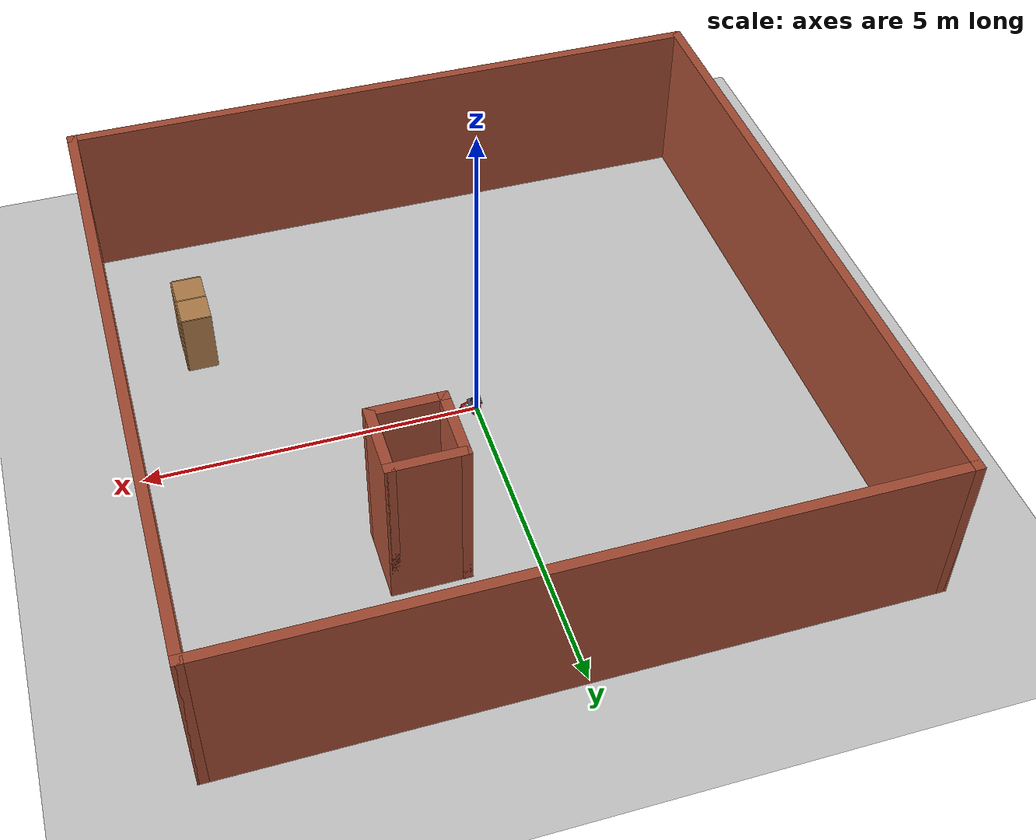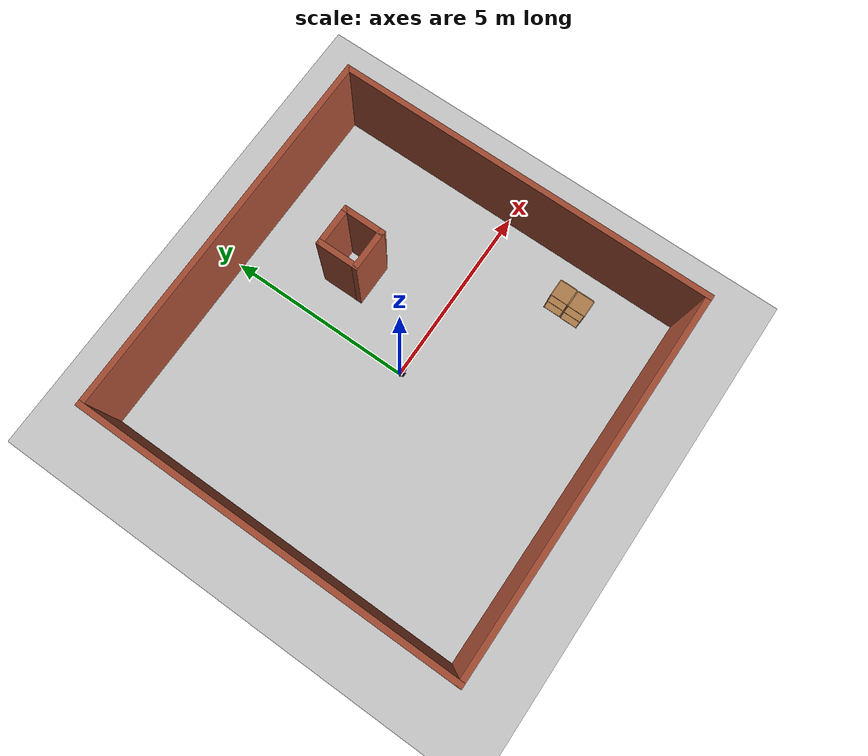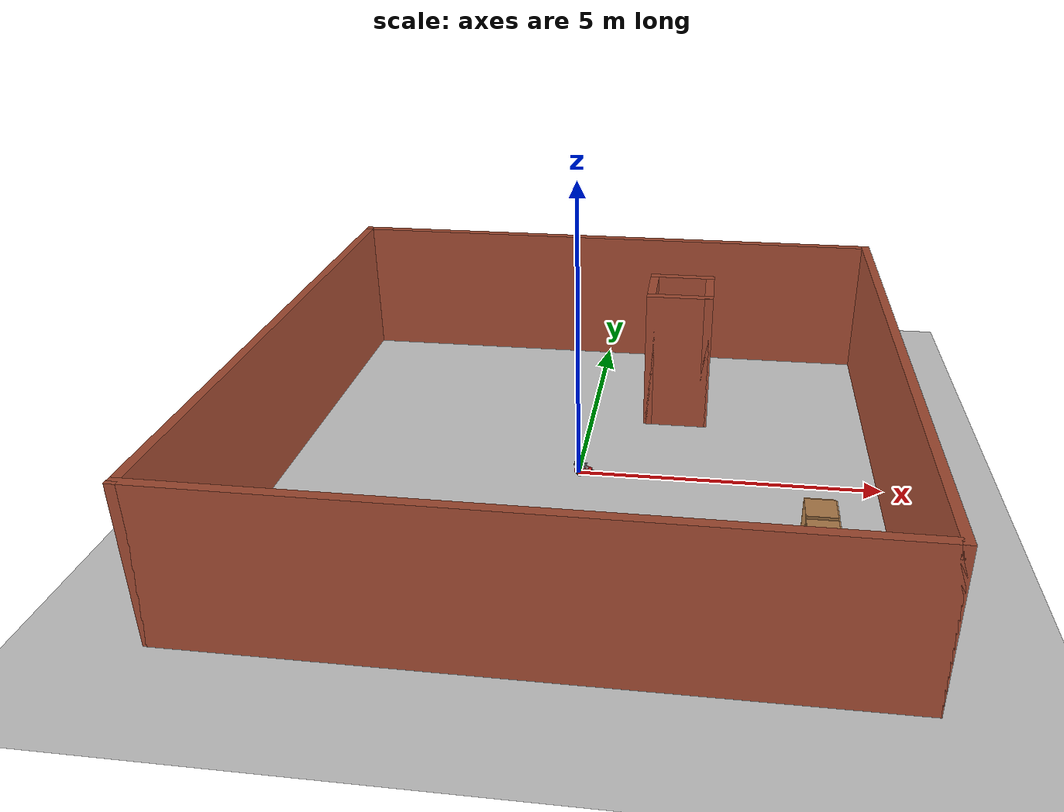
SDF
<sdf version="1.7">
 <world name="default">
  <light name="sun" type="directional">
   <pose>0 0 10 0 -0 0</pose>
   <diffuse>0.8 0.8 0.8 1</diffuse>
   <specular>0.2 0.2 0.2 1</specular>
   <attenuation>
    <range>1000</range>
    <constant>0.9</constant>
    <linear>0.01</linear>
    <quadratic>0.001</quadratic>
   </attenuation>
   <direction>-0.5 0.1 -0.9</direction>
   <spot><inner_angle>0</inner_angle><outer_angle>0</outer_angle><falloff>0</falloff></spot>
  </light>
  <model name="ground_plane">
   <static>1</static>
   <link name="link">
    <collision name="collision">
     <geometry><plane><normal>0 0 1</normal><size>100 100</size></plane></geometry>
     <surface><friction><ode><mu>100</mu><mu2>50</mu2></ode></friction></surface>
    </collision>
    <visual name="visual">
     <cast_shadows>0</cast_shadows>
     <geometry><plane><normal>0 0 1</normal><size>100 100</size></plane></geometry>
     <material>
      <script><uri>file://media/materials/scripts/gazebo.material</uri><name>Gazebo/Grey</name></script>
     </material>
    </visual>
   </link>
  </model>
  <gravity>0 0 -9.8</gravity>
  <magnetic_field>6e-06 2.3e-05 -4.2e-05</magnetic_field>
  <atmosphere type="adiabatic"/>
  <physics type="ode">
   <max_step_size>0.001</max_step_size>
   <real_time_factor>1</real_time_factor>
   <real_time_update_rate>1000</real_time_update_rate>
  </physics>
  <scene><ambient>0.4 0.4 0.4 1</ambient><background>0.7 0.7 0.7 1</background><shadows>1</shadows></scene>
  <audio><device>default</device></audio>
  <spherical_coordinates>
   <surface_model>EARTH_WGS84</surface_model>
   <latitude_deg>0</latitude_deg>
   <longitude_deg>0</longitude_deg>
   <elevation>0</elevation>
   <heading_deg>0</heading_deg>
  </spherical_coordinates>
  <model name="boundary">
   <link name="Wall_0">
    <collision name="Wall_0_Collision">
     <geometry><box><size>10.15 0.15 2.5</size></box></geometry>
     <pose>0 0 1.25 0 -0 0</pose>
    </collision>
    <visual name="Wall_0_Visual">
     <pose>0 0 1.25 0 -0 0</pose>
     <geometry><box><size>10.15 0.15 2.5</size></box></geometry>
     <material>
      <script><uri>file://media/materials/scripts/gazebo.material</uri><name>Gazebo/Bricks</name></script>
      <ambient>1 1 1 1</ambient>
     </material>
     <meta><layer>0</layer></meta>
    </visual>
    <pose>-5 0 0 0 -0 1.5708</pose>
   </link>
   <link name="Wall_2">
    <collision name="Wall_2_Collision">
     <geometry><box><size>10.15 0.15 2.5</size></box></geometry>
     <pose>0 0 1.25 0 -0 0</pose>
    </collision>
    <visual name="Wall_2_Visual">
     <pose>0 0 1.25 0 -0 0</pose>
     <geometry><box><size>10.15 0.15 2.5</size></box></geometry>
     <material>
      <script><uri>file://media/materials/scripts/gazebo.material</uri><name>Gazebo/Bricks</name></script>
      <ambient>1 1 1 1</ambient>
     </material>
     <meta><layer>0</layer></meta>
    </visual>
    <pose>0 5 0 0 -0 0</pose>
   </link>
   <link name="Wall_4">
    <collision name="Wall_4_Collision">
     <geometry><box><size>10.15 0.15 2.5</size></box></geometry>
     <pose>0 0 1.25 0 -0 0</pose>
    </collision>
    <visual name="Wall_4_Visual">
     <pose>0 0 1.25 0 -0 0</pose>
     <geometry><box><size>10.15 0.15 2.5</size></box></geometry>
     <material>
      <script><uri>file://media/materials/scripts/gazebo.material</uri><name>Gazebo/Bricks</name></script>
      <ambient>1 1 1 1</ambient>
     </material>
     <meta><layer>0</layer></meta>
    </visual>
    <pose>5 0 0 0 -0 -1.5708</pose>
   </link>
   <link name="Wall_6">
    <collision name="Wall_6_Collision">
     <geometry><box><size>10.15 0.15 2.5</size></box></geometry>
     <pose>0 0 1.25 0 -0 0</pose>
    </collision>
    <visual name="Wall_6_Visual">
     <pose>0 0 1.25 0 -0 0</pose>
     <geometry><box><size>10.15 0.15 2.5</size></box></geometry>
     <material>
      <script><uri>file://media/materials/scripts/gazebo.material</uri><name>Gazebo/Bricks</name></script>
      <ambient>1 1 1 1</ambient>
     </material>
     <meta><layer>0</layer></meta>
    </visual>
    <pose>0 -5 0 0 -0 0</pose>
   </link>
   <static>1</static>
  </model>
  <model name="cabinet">
   <static>1</static>
   <link name="cabinet_bottom_plate">
    <inertial>
     <pose>0 0 -1 0 -0 0</pose>
     <inertia><ixx>2.05</ixx><ixy>0</ixy><ixz>0</ixz><iyy>2.05</iyy><iyz>0</iyz><izz>2.05</izz></inertia>
     <mass>25</mass>
    </inertial>
    <collision name="cabinet_bottom_plate_geom">
     <pose>0 0 0.01 0 -0 0</pose>
     <geometry><box><size>0.45 0.45 0.02</size></box></geometry>
    </collision>
    <visual name="cabinet_bottom_plate_geom_visual">
     <pose>0 0 0.01 0 -0 0</pose>
     <geometry><box><size>0.45 0.45 0.02</size></box></geometry>
     <material>
      <script><uri>file://media/materials/scripts/gazebo.material</uri><name>Gazebo/Wood</name></script>
     </material>
    </visual>
    <collision name="cabinet_bottom_plate_geom_cabinet_back_plate">
     <pose>0.235 0 0.51 0 -0 0</pose>
     <geometry><box><size>0.02 0.45 1.02</size></box></geometry>
    </collision>
    <visual name="cabinet_bottom_plate_geom_cabinet_back_plate_visual">
     <pose>0.235 0 0.51 0 -0 0</pose>
     <geometry><box><size>0.02 0.45 1.02</size></box></geometry>
     <material>
      <script><uri>file://media/materials/scripts/gazebo.material</uri><name>Gazebo/Wood</name></script>
     </material>
    </visual>
    <collision name="cabinet_bottom_plate_geom_cabinet_left_plate">
     <pose>0 0.235 0.51 0 -0 0</pose>
     <geometry><box><size>0.45 0.02 1.02</size></box></geometry>
    </collision>
    <visual name="cabinet_bottom_plate_geom_cabinet_left_plate_visual">
     <pose>0 0.235 0.51 0 -0 0</pose>
     <geometry><box><size>0.45 0.02 1.02</size></box></geometry>
     <material>
      <script><uri>file://media/materials/scripts/gazebo.material</uri><name>Gazebo/Wood</name></script>
     </material>
    </visual>
    <collision name="cabinet_bottom_plate_geom_cabinet_middle_plate">
     <pose>0 0 0.51 0 -0 0</pose>
     <geometry><box><size>0.45 0.45 0.02</size></box></geometry>
    </collision>
    <visual name="cabinet_bottom_plate_geom_cabinet_middle_plate_visual">
     <pose>0 0 0.51 0 -0 0</pose>
     <geometry><box><size>0.45 0.45 0.02</size></box></geometry>
     <material>
      <script><uri>file://media/materials/scripts/gazebo.material</uri><name>Gazebo/Wood</name></script>
     </material>
    </visual>
    <collision name="cabinet_bottom_plate_geom_cabinet_right_plate">
     <pose>0 -0.235 0.51 0 -0 0</pose>
     <geometry><box><size>0.45 0.02 1.02</size></box></geometry>
    </collision>
    <visual name="cabinet_bottom_plate_geom_cabinet_right_plate_visual">
     <pose>0 -0.235 0.51 0 -0 0</pose>
     <geometry><box><size>0.45 0.02 1.02</size></box></geometry>
     <material>
      <script><uri>file://media/materials/scripts/gazebo.material</uri><name>Gazebo/Wood</name></script>
     </material>
    </visual>
    <collision name="cabinet_bottom_plate_geom_cabinet_top_plate">
     <pose>0 0 1.01 0 -0 0</pose>
     <geometry><box><size>0.45 0.45 0.02</size></box></geometry>
    </collision>
    <visual name="cabinet_bottom_plate_geom_cabinet_top_plate_visual">
     <pose>0 0 1.01 0 -0 0</pose>
     <geometry><box><size>0.45 0.45 0.02</size></box></geometry>
     <material>
      <script><uri>file://media/materials/scripts/gazebo.material</uri><name>Gazebo/Wood</name></script>
     </material>
    </visual>
   </link>
   <pose>3.75742 -2.24472 0.02454 0 -0 0</pose>
  </model>
  <model name="cabinet_0">
   <static>1</static>
   <link name="cabinet_bottom_plate">
    <inertial>
     <pose>0 0 -1 0 -0 0</pose>
     <inertia><ixx>2.05</ixx><ixy>0</ixy><ixz>0</ixz><iyy>2.05</iyy><iyz>0</iyz><izz>2.05</izz></inertia>
     <mass>25</mass>
    </inertial>
    <collision name="cabinet_bottom_plate_geom">
     <pose>0 0 0.01 0 -0 0</pose>
     <geometry><box><size>0.45 0.45 0.02</size></box></geometry>
    </collision>
    <visual name="cabinet_bottom_plate_geom_visual">
     <pose>0 0 0.01 0 -0 0</pose>
     <geometry><box><size>0.45 0.45 0.02</size></box></geometry>
     <material>
      <script><uri>file://media/materials/scripts/gazebo.material</uri><name>Gazebo/Wood</name></script>
     </material>
    </visual>
    <collision name="cabinet_bottom_plate_geom_cabinet_back_plate">
     <pose>0.235 0 0.51 0 -0 0</pose>
     <geometry><box><size>0.02 0.45 1.02</size></box></geometry>
    </collision>
    <visual name="cabinet_bottom_plate_geom_cabinet_back_plate_visual">
     <pose>0.235 0 0.51 0 -0 0</pose>
     <geometry><box><size>0.02 0.45 1.02</size></box></geometry>
     <material>
      <script><uri>file://media/materials/scripts/gazebo.material</uri><name>Gazebo/Wood</name></script>
     </material>
    </visual>
    <collision name="cabinet_bottom_plate_geom_cabinet_left_plate">
     <pose>0 0.235 0.51 0 -0 0</pose>
     <geometry><box><size>0.45 0.02 1.02</size></box></geometry>
    </collision>
    <visual name="cabinet_bottom_plate_geom_cabinet_left_plate_visual">
     <pose>0 0.235 0.51 0 -0 0</pose>
     <geometry><box><size>0.45 0.02 1.02</size></box></geometry>
     <material>
      <script><uri>file://media/materials/scripts/gazebo.material</uri><name>Gazebo/Wood</name></script>
     </material>
    </visual>
    <collision name="cabinet_bottom_plate_geom_cabinet_middle_plate">
     <pose>0 0 0.51 0 -0 0</pose>
     <geometry><box><size>0.45 0.45 0.02</size></box></geometry>
    </collision>
    <visual name="cabinet_bottom_plate_geom_cabinet_middle_plate_visual">
     <pose>0 0 0.51 0 -0 0</pose>
     <geometry><box><size>0.45 0.45 0.02</size></box></geometry>
     <material>
      <script><uri>file://media/materials/scripts/gazebo.material</uri><name>Gazebo/Wood</name></script>
     </material>
    </visual>
    <collision name="cabinet_bottom_plate_geom_cabinet_right_plate">
     <pose>0 -0.235 0.51 0 -0 0</pose>
     <geometry><box><size>0.45 0.02 1.02</size></box></geometry>
    </collision>
    <visual name="cabinet_bottom_plate_geom_cabinet_right_plate_visual">
     <pose>0 -0.235 0.51 0 -0 0</pose>
     <geometry><box><size>0.45 0.02 1.02</size></box></geometry>
     <material>
      <script><uri>file://media/materials/scripts/gazebo.material</uri><name>Gazebo/Wood</name></script>
     </material>
    </visual>
    <collision name="cabinet_bottom_plate_geom_cabinet_top_plate">
     <pose>0 0 1.01 0 -0 0</pose>
     <geometry><box><size>0.45 0.45 0.02</size></box></geometry>
    </collision>
    <visual name="cabinet_bottom_plate_geom_cabinet_top_plate_visual">
     <pose>0 0 1.01 0 -0 0</pose>
     <geometry><box><size>0.45 0.45 0.02</size></box></geometry>
     <material>
      <script><uri>file://media/materials/scripts/gazebo.material</uri><name>Gazebo/Wood</name></script>
     </material>
    </visual>
   </link>
   <pose>3.75874 -2.73819 0 0 -0 0</pose>
  </model>
  <model name="pillar">
   <pose>1.9849 1.96819 0 0 -0 0</pose>
   <link name="Wall_30">
    <collision name="Wall_30_Collision">
     <geometry><box><size>1.15 0.15 2.5</size></box></geometry>
     <pose>0 0 1.25 0 -0 0</pose>
    </collision>
    <visual name="Wall_30_Visual">
     <pose>0 0 1.25 0 -0 0</pose>
     <geometry><box><size>1.15 0.15 2.5</size></box></geometry>
     <material>
      <script><uri>file://media/materials/scripts/gazebo.material</uri><name>Gazebo/Bricks</name></script>
      <ambient>1 1 1 1</ambient>
     </material>
     <meta><layer>0</layer></meta>
    </visual>
    <pose>-0.4625 -0.0375 0 0 -0 0</pose>
   </link>
   <link name="Wall_32">
    <collision name="Wall_32_Collision">
     <geometry><box><size>1.15 0.15 2.5</size></box></geometry>
     <pose>0 0 1.25 0 -0 0</pose>
    </collision>
    <visual name="Wall_32_Visual">
     <pose>0 0 1.25 0 -0 0</pose>
     <geometry><box><size>1.15 0.15 2.5</size></box></geometry>
     <material>
      <script><uri>file://media/materials/scripts/gazebo.material</uri><name>Gazebo/Bricks</name></script>
      <ambient>1 1 1 1</ambient>
     </material>
     <meta><layer>0</layer></meta>
    </visual>
    <pose>-0.9625 0.4625 0 0 -0 1.5708</pose>
   </link>
   <link name="Wall_34">
    <collision name="Wall_34_Collision">
     <geometry><box><size>1.15 0.15 2.5</size></box></geometry>
     <pose>0 0 1.25 0 -0 0</pose>
    </collision>
    <visual name="Wall_34_Visual">
     <pose>0 0 1.25 0 -0 0</pose>
     <geometry><box><size>1.15 0.15 2.5</size></box></geometry>
     <material>
      <script><uri>file://media/materials/scripts/gazebo.material</uri><name>Gazebo/Bricks</name></script>
      <ambient>1 1 1 1</ambient>
     </material>
     <meta><layer>0</layer></meta>
    </visual>
    <pose>-0.4625 0.9625 0 0 -0 0</pose>
   </link>
   <link name="Wall_36">
    <collision name="Wall_36_Collision">
     <geometry><box><size>1.15 0.15 2.5</size></box></geometry>
     <pose>0 0 1.25 0 -0 0</pose>
    </collision>
    <visual name="Wall_36_Visual">
     <pose>0 0 1.25 0 -0 0</pose>
     <geometry><box><size>1.15 0.15 2.5</size></box></geometry>
     <material>
      <script><uri>file://media/materials/scripts/gazebo.material</uri><name>Gazebo/Bricks</name></script>
      <ambient>1 1 1 1</ambient>
     </material>
     <meta><layer>0</layer></meta>
    </visual>
    <pose>0.0375 0.4625 0 0 -0 -1.5708</pose>
   </link>
   <static>1</static>
  </model>
  <model name="duckie_bot">
   <link name="base_footprint">
    <inertial>
     <pose>0.024307 0 0.066702 0 -0 0</pose>
     <mass>2.705</mass>
     <inertia>
      <ixx>0.0122819</ixx>
      <ixy>0</ixy>
      <ixz>0.00175218</ixz>
      <iyy>0.0256112</iyy>
      <iyz>0</iyz>
      <izz>0.0236393</izz>
     </inertia>
    </inertial>
    <collision name="base_footprint_fixed_joint_lump__base_link_collision">
     <pose>-0.05 0 0.06 0 -0 0</pose>
     <geometry><box><size>0.14 0.16 0.05</size></box></geometry>
    </collision>
    <collision name="base_footprint_fixed_joint_lump__base_link_collision_1">
     <pose>0.07 0 0.06 0 -0 0</pose>
     <geometry><box><size>0.1 0.08 0.05</size></box></geometry>
    </collision>
    <collision name="base_footprint_fixed_joint_lump__base_link_collision_2">
     <pose>0.04 0 0.06 0 -0 0</pose>
     <geometry><box><size>0.06 0.12 0.05</size></box></geometry>
    </collision>
    <collision name="base_footprint_fixed_joint_lump__base_link_collision_3">
     <pose>-0.14 0 0.06 0 -0 0</pose>
     <geometry><box><size>0.04 0.12 0.05</size></box></geometry>
    </collision>
    <collision name="base_footprint_fixed_joint_lump__camera_link_collision_4">
     <pose>0.03 0 0.1 0 -0 0</pose>
     <geometry><box><size>0.05 0.04 0.03</size></box></geometry>
    </collision>
    <collision name="base_footprint_fixed_joint_lump__caster_ball_collision_5">
     <pose>0.13 0 0.035 0 -0 0</pose>
     <geometry><sphere><radius>0.035</radius></sphere></geometry>
     <surface><friction><ode><mu>0</mu><mu2>0</mu2></ode></friction></surface>
    </collision>
    <collision name="base_footprint_fixed_joint_lump__imu_link_collision_6">
     <pose>-0.05 0 0.086 0 -0 0</pose>
     <geometry><box><size>0.02 0.015 0.002</size></box></geometry>
    </collision>
    <collision name="base_footprint_fixed_joint_lump__lidar_link_collision_7">
     <pose>-0.045 0 0.1625 0 -0 0</pose>
     <geometry><cylinder><length>0.04</length><radius>0.035</radius></cylinder></geometry>
    </collision>
    <visual name="base_footprint_fixed_joint_lump__base_link_visual">
     <pose>-0.05 0 0.06 0 -0 0</pose>
     <geometry><box><size>0.14 0.16 0.05</size></box></geometry>
     <material>
      <script><name>Gazebo/Red</name><uri>file://media/materials/scripts/gazebo.material</uri></script>
     </material>
    </visual>
    <visual name="base_footprint_fixed_joint_lump__base_link_visual_1">
     <pose>0.07 0 0.06 0 -0 0</pose>
     <geometry><box><size>0.1 0.08 0.05</size></box></geometry>
     <material>
      <script><name>Gazebo/Red</name><uri>file://media/materials/scripts/gazebo.material</uri></script>
     </material>
    </visual>
    <visual name="base_footprint_fixed_joint_lump__base_link_visual_2">
     <pose>0.04 0 0.06 0 -0 0</pose>
     <geometry><box><size>0.06 0.12 0.05</size></box></geometry>
     <material>
      <script><name>Gazebo/Red</name><uri>file://media/materials/scripts/gazebo.material</uri></script>
     </material>
    </visual>
    <visual name="base_footprint_fixed_joint_lump__base_link_visual_3">
     <pose>-0.14 0 0.06 0 -0 0</pose>
     <geometry><box><size>0.04 0.12 0.05</size></box></geometry>
     <material>
      <script><name>Gazebo/Red</name><uri>file://media/materials/scripts/gazebo.material</uri></script>
     </material>
    </visual>
    <visual name="base_footprint_fixed_joint_lump__base_link_visual_4">
     <pose>0.07 0.06 0.06 0 0 -0.38</pose>
     <geometry><box><size>0.11 0.02 0.05</size></box></geometry>
     <material>
      <script><name>Gazebo/Red</name><uri>file://media/materials/scripts/gazebo.material</uri></script>
     </material>
    </visual>
    <visual name="base_footprint_fixed_joint_lump__base_link_visual_5">
     <pose>0.07 -0.06 0.06 0 -0 0.38</pose>
     <geometry><box><size>0.11 0.02 0.05</size></box></geometry>
     <material>
      <script><name>Gazebo/Red</name><uri>file://media/materials/scripts/gazebo.material</uri></script>
     </material>
    </visual>
    <visual name="base_footprint_fixed_joint_lump__camera_link_visual_6">
     <pose>0.04 0 0.1 0 -0 0</pose>
     <geometry><box><size>0.03 0.04 0.03</size></box></geometry>
     <material>
      <script><name>Gazebo/White</name><uri>file://media/materials/scripts/gazebo.material</uri></script>
     </material>
    </visual>
    <visual name="base_footprint_fixed_joint_lump__camera_link_visual_7">
     <pose>0.06 0 0.1 3.14159 1.57079 3.14159</pose>
     <geometry><cylinder><length>0.015</length><radius>0.012</radius></cylinder></geometry>
     <material>
      <script><name>Gazebo/White</name><uri>file://media/materials/scripts/gazebo.material</uri></script>
     </material>
    </visual>
    <visual name="base_footprint_fixed_joint_lump__camera_link_visual_8">
     <pose>0.068 0 0.1 3.14159 1.57079 3.14159</pose>
     <geometry><cylinder><length>0.002</length><radius>0.01</radius></cylinder></geometry>
     <material>
      <script><name>Gazebo/White</name><uri>file://media/materials/scripts/gazebo.material</uri></script>
     </material>
    </visual>
    <visual name="base_footprint_fixed_joint_lump__caster_ball_visual_9">
     <pose>0.13 0 0.035 0 -0 0</pose>
     <geometry><sphere><radius>0.035</radius></sphere></geometry>
     <material>
      <script><name>Gazebo/Black</name><uri>file://media/materials/scripts/gazebo.material</uri></script>
     </material>
    </visual>
    <visual name="base_footprint_fixed_joint_lump__center_glow_visual_10">
     <pose>0 0 0.086 0 -0 0</pose>
     <geometry><cylinder><length>0.01</length><radius>0.04</radius></cylinder></geometry>
     <material>
      <script><name>Gazebo/RedGlow</name><uri>file://media/materials/scripts/gazebo.material</uri></script>
     </material>
    </visual>
    <visual name="base_footprint_fixed_joint_lump__imu_link_visual_11">
     <pose>-0.05 0 0.086 0 -0 0</pose>
     <geometry><box><size>0.02 0.015 0.002</size></box></geometry>
     <material>
      <script><name>Gazebo/Blue</name><uri>file://media/materials/scripts/gazebo.material</uri></script>
     </material>
    </visual>
    <visual name="base_footprint_fixed_joint_lump__imu_link_visual_12">
     <pose>-0.05 0 0.0875 0 -0 0</pose>
     <geometry><box><size>0.005 0.005 0.001</size></box></geometry>
     <material>
      <script><name>Gazebo/Blue</name><uri>file://media/materials/scripts/gazebo.material</uri></script>
     </material>
    </visual>
    <visual name="base_footprint_fixed_joint_lump__imu_link_visual_13">
     <pose>-0.044 0.003 0.0875 0 -0 0</pose>
     <geometry><box><size>0.003 0.002 0.001</size></box></geometry>
     <material>
      <script><name>Gazebo/Blue</name><uri>file://media/materials/scripts/gazebo.material</uri></script>
     </material>
    </visual>
    <visual name="base_footprint_fixed_joint_lump__imu_link_visual_14">
     <pose>-0.058 0 0.088 0 -0 0</pose>
     <geometry><box><size>0.002 0.014 0.003</size></box></geometry>
     <material>
      <script><name>Gazebo/Blue</name><uri>file://media/materials/scripts/gazebo.material</uri></script>
     </material>
    </visual>
    <visual name="base_footprint_fixed_joint_lump__spoiler_visual_15">
     <pose>-0.14 0 0.205 0 -0 0</pose>
     <geometry><box><size>0.05 0.22 0.005</size></box></geometry>
     <material>
      <script><name>Gazebo/DarkGrey</name><uri>file://media/materials/scripts/gazebo.material</uri></script>
     </material>
    </visual>
    <visual name="base_footprint_fixed_joint_lump__spoiler_visual_16">
     <pose>-0.14 0.05 0.145 0 -0 0</pose>
     <geometry><box><size>0.01 0.005 0.12</size></box></geometry>
     <material>
      <script><name>Gazebo/DarkGrey</name><uri>file://media/materials/scripts/gazebo.material</uri></script>
     </material>
    </visual>
    <visual name="base_footprint_fixed_joint_lump__spoiler_visual_17">
     <pose>-0.14 -0.05 0.145 0 -0 0</pose>
     <geometry><box><size>0.01 0.005 0.12</size></box></geometry>
     <material>
      <script><name>Gazebo/DarkGrey</name><uri>file://media/materials/scripts/gazebo.material</uri></script>
     </material>
    </visual>
    <visual name="base_footprint_fixed_joint_lump__spoiler_visual_18">
     <pose>-0.14 0.11 0.215 0 -0 0</pose>
     <geometry><box><size>0.06 0.002 0.03</size></box></geometry>
     <material>
      <script><name>Gazebo/DarkGrey</name><uri>file://media/materials/scripts/gazebo.material</uri></script>
     </material>
    </visual>
    <visual name="base_footprint_fixed_joint_lump__spoiler_visual_19">
     <pose>-0.14 -0.11 0.215 0 -0 0</pose>
     <geometry><box><size>0.06 0.002 0.03</size></box></geometry>
     <material>
      <script><name>Gazebo/DarkGrey</name><uri>file://media/materials/scripts/gazebo.material</uri></script>
     </material>
    </visual>
    <visual name="base_footprint_fixed_joint_lump__standoffs_visual_20">
     <pose>-0.11 0.07 0.1 0 -0 0</pose>
     <geometry><cylinder><length>0.08</length><radius>0.005</radius></cylinder></geometry>
    </visual>
    <visual name="base_footprint_fixed_joint_lump__standoffs_visual_21">
     <pose>-0.11 -0.07 0.1 0 -0 0</pose>
     <geometry><cylinder><length>0.08</length><radius>0.005</radius></cylinder></geometry>
    </visual>
    <visual name="base_footprint_fixed_joint_lump__standoffs_visual_22">
     <pose>0.02 0.07 0.1 0 -0 0</pose>
     <geometry><cylinder><length>0.08</length><radius>0.005</radius></cylinder></geometry>
    </visual>
    <visual name="base_footprint_fixed_joint_lump__standoffs_visual_23">
     <pose>0.02 -0.07 0.1 0 -0 0</pose>
     <geometry><cylinder><length>0.08</length><radius>0.005</radius></cylinder></geometry>
    </visual>
    <visual name="base_footprint_fixed_joint_lump__top_plate_visual_24">
     <pose>-0.045 0 0.14 0 -0 0</pose>
     <geometry><box><size>0.15 0.17 0.005</size></box></geometry>
     <material>
      <script><name>Gazebo/DarkGrey</name><uri>file://media/materials/scripts/gazebo.material</uri></script>
     </material>
    </visual>
    <visual name="base_footprint_fixed_joint_lump__lidar_link_visual_25">
     <pose>-0.045 0 0.155 0 -0 0</pose>
     <geometry><cylinder><length>0.025</length><radius>0.035</radius></cylinder></geometry>
     <material>
      <script><name>Gazebo/FlatBlack</name><uri>file://media/materials/scripts/gazebo.material</uri></script>
     </material>
    </visual>
    <visual name="base_footprint_fixed_joint_lump__lidar_link_visual_26">
     <pose>-0.045 0 0.175 0 -0 0</pose>
     <geometry><cylinder><length>0.015</length><radius>0.03</radius></cylinder></geometry>
     <material>
      <script><name>Gazebo/FlatBlack</name><uri>file://media/materials/scripts/gazebo.material</uri></script>
     </material>
    </visual>
    <visual name="base_footprint_fixed_joint_lump__lidar_link_visual_27">
     <pose>-0.017 0 0.175 0 -0 0</pose>
     <geometry><box><size>0.01 0.02 0.01</size></box></geometry>
     <material>
      <script><name>Gazebo/FlatBlack</name><uri>file://media/materials/scripts/gazebo.material</uri></script>
     </material>
    </visual>
    <sensor name="rear_depth_camera" type="depth">
     <always_on>1</always_on>
     <update_rate>15</update_rate>
     <visualize>1</visualize>
     <camera name="camera">
      <horizontal_fov>1.047</horizontal_fov>
      <image><width>640</width><height>480</height><format>R8G8B8</format></image>
      <clip><near>0.1</near><far>10</far></clip>
      <depth_camera><output>depths</output></depth_camera>
     </camera>
     <plugin name="camera_controller" filename="libgazebo_ros_camera.so">
      <ros>
       <namespace>camera</namespace>
       <remapping>custom_camera/image_raw:=color/image_raw</remapping>
       <remapping>custom_camera/image_depth:=depth/image_raw</remapping>
       <remapping>custom_camera/camera_info:=color/camera_info</remapping>
       <remapping>custom_camera/camera_info_depth:=depth/camera_info</remapping>
       <remapping>custom_camera/points:=depth/points</remapping>
      </ros>
      <camera_name>camera</camera_name>
      <frame_name>camera_link_optical</frame_name>
      <hack_baseline>0.07</hack_baseline>
      <min_depth>0.1</min_depth>
      <max_depth>10.0</max_depth>
     </plugin>
     <pose>0.05 0 0.1 0 -0 0</pose>
    </sensor>
    <sensor name="imu_sensor" type="imu">
     <always_on>1</always_on>
     <update_rate>100</update_rate>
     <visualize>1</visualize>
     <plugin name="imu_plugin" filename="libgazebo_ros_imu_sensor.so">
      <ros><remapping>~/out:=imu</remapping></ros>
      <initial_orientation_as_reference>0</initial_orientation_as_reference>
     </plugin>
     <pose>-0.05 0 0.086 0 -0 0</pose>
    </sensor>
    <sensor name="lidar_sensor" type="ray">
     <visualize>0</visualize>
     <update_rate>10</update_rate>
     <ray>
      <scan>
       <horizontal>
        <samples>720</samples>
        <resolution>1</resolution>
        <min_angle>-3.14159</min_angle>
        <max_angle>3.14159</max_angle>
       </horizontal>
       <vertical><samples>1</samples><min_angle>0</min_angle><max_angle>0</max_angle></vertical>
      </scan>
      <range><min>0.15</min><max>3</max><resolution>0.01</resolution></range>
      <noise><type>gaussian</type><mean>0</mean><stddev>0.01</stddev></noise>
     </ray>
     <plugin name="gazebo_ros_head_hokuyo_controller" filename="libgazebo_ros_ray_sensor.so">
      <ros><remapping>~/out:=scan</remapping></ros>
      <output_type>sensor_msgs/LaserScan</output_type>
      <frame_name>lidar_link</frame_name>
     </plugin>
     <pose>-0.045 0 0.155 0 -0 0</pose>
    </sensor>
   </link>
   <joint name="left_wheel_joint" type="revolute">
    <pose relative_to="base_footprint">-0.06 0.1 0.06 0 -0 0</pose>
    <parent>base_footprint</parent>
    <child>left_wheel</child>
    <axis>
     <xyz>0 -1 0</xyz>
     <limit><lower>-1e+16</lower><upper>1e+16</upper></limit>
     <dynamics><spring_reference>0</spring_reference><spring_stiffness>0</spring_stiffness></dynamics>
    </axis>
   </joint>
   <link name="left_wheel">
    <pose relative_to="left_wheel_joint">0 0 0 0 -0 0</pose>
    <inertial>
     <mass>0.4</mass>
     <inertia><ixx>0.001</ixx><ixy>0</ixy><ixz>0</ixz><iyy>0.001</iyy><iyz>0</iyz><izz>0.001</izz></inertia>
    </inertial>
    <collision name="left_wheel_collision">
     <pose>0 0 0 1.5708 -0 0</pose>
     <geometry><cylinder><length>0.04</length><radius>0.06</radius></cylinder></geometry>
     <surface><friction><ode><mu>1</mu><mu2>1</mu2></ode></friction></surface>
    </collision>
    <visual name="left_wheel_visual">
     <pose>0 0 0 1.5708 -0 0</pose>
     <geometry><cylinder><length>0.04</length><radius>0.06</radius></cylinder></geometry>
     <material>
      <script><name>Gazebo/Black</name><uri>file://media/materials/scripts/gazebo.material</uri></script>
     </material>
    </visual>
   </link>
   <joint name="right_wheel_joint" type="revolute">
    <pose relative_to="base_footprint">-0.06 -0.1 0.06 0 -0 0</pose>
    <parent>base_footprint</parent>
    <child>right_wheel</child>
    <axis>
     <xyz>0 -1 0</xyz>
     <limit><lower>-1e+16</lower><upper>1e+16</upper></limit>
     <dynamics><spring_reference>0</spring_reference><spring_stiffness>0</spring_stiffness></dynamics>
    </axis>
   </joint>
   <link name="right_wheel">
    <pose relative_to="right_wheel_joint">0 0 0 0 -0 0</pose>
    <inertial>
     <mass>0.4</mass>
     <inertia><ixx>0.001</ixx><ixy>0</ixy><ixz>0</ixz><iyy>0.001</iyy><iyz>0</iyz><izz>0.001</izz></inertia>
    </inertial>
    <collision name="right_wheel_collision">
     <pose>0 0 0 1.5708 -0 0</pose>
     <geometry><cylinder><length>0.04</length><radius>0.06</radius></cylinder></geometry>
     <surface><friction><ode><mu>1</mu><mu2>1</mu2></ode></friction></surface>
    </collision>
    <visual name="right_wheel_visual">
     <pose>0 0 0 1.5708 -0 0</pose>
     <geometry><cylinder><length>0.04</length><radius>0.06</radius></cylinder></geometry>
     <material>
      <script><name>Gazebo/Black</name><uri>file://media/materials/scripts/gazebo.material</uri></script>
     </material>
    </visual>
   </link>
   <static>0</static>
   <plugin name="diff_drive" filename="libgazebo_ros_diff_drive.so">
    <left_joint>right_wheel_joint</left_joint>
    <right_joint>left_wheel_joint</right_joint>
    <wheel_separation>0.20</wheel_separation>
    <wheel_diameter>0.12</wheel_diameter>
    <max_wheel_torque>20</max_wheel_torque>
    <max_wheel_acceleration>1.0</max_wheel_acceleration>
    <publish_odom>1</publish_odom>
    <publish_odom_tf>1</publish_odom_tf>
    <publish_wheel_tf>1</publish_wheel_tf>
    <odometry_frame>odom</odometry_frame>
    <robot_base_frame>base_footprint</robot_base_frame>
   </plugin>
   <pose>0.101954 -0.006489 0 -1e-06 -0 -0.068124</pose>
  </model>
 </world>
</sdf>
